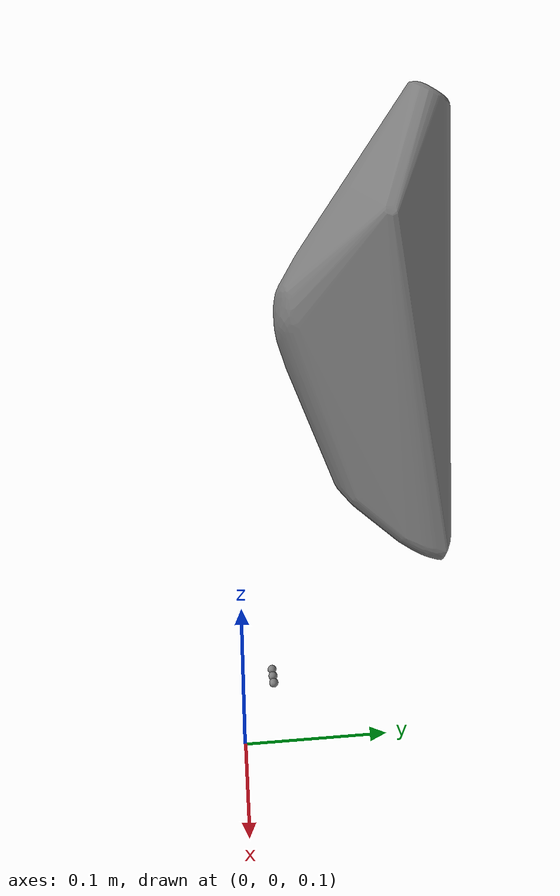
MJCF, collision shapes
<mujoco model="phantom">
  <compiler meshdir="meshes" />
  <asset>
    <mesh name="visual" file="AAA002/visual.stl" />
    <mesh name="hull_0" file="AAA002/hull_0.stl" />
  </asset>
  <worldbody>
    <body name="phantom">
      <geom name="visual" type="mesh" mesh="visual" contype="0" conaffinity="0" group="2" />
      <geom type="mesh" mesh="hull_0" />

      <!-- Centerline-based sites -->
      <site name="start" pos="0.028279 0.085549 0.299546" size="0.003" rgba="0 1 0 1" />
      <site name="goal" pos="0.047853 0.111127 0.516487" size="0.003" rgba="1 0 0 1" />
      <site name="bca" pos="0.0 0.02 0.15" size="0.003" />
      <site name="lcca" pos="-0.01 0.02 0.15" size="0.003" />
      <site name="lsa" pos="0.01 0.02 0.15" size="0.003" />
    </body>
  </worldbody>
</mujoco>
